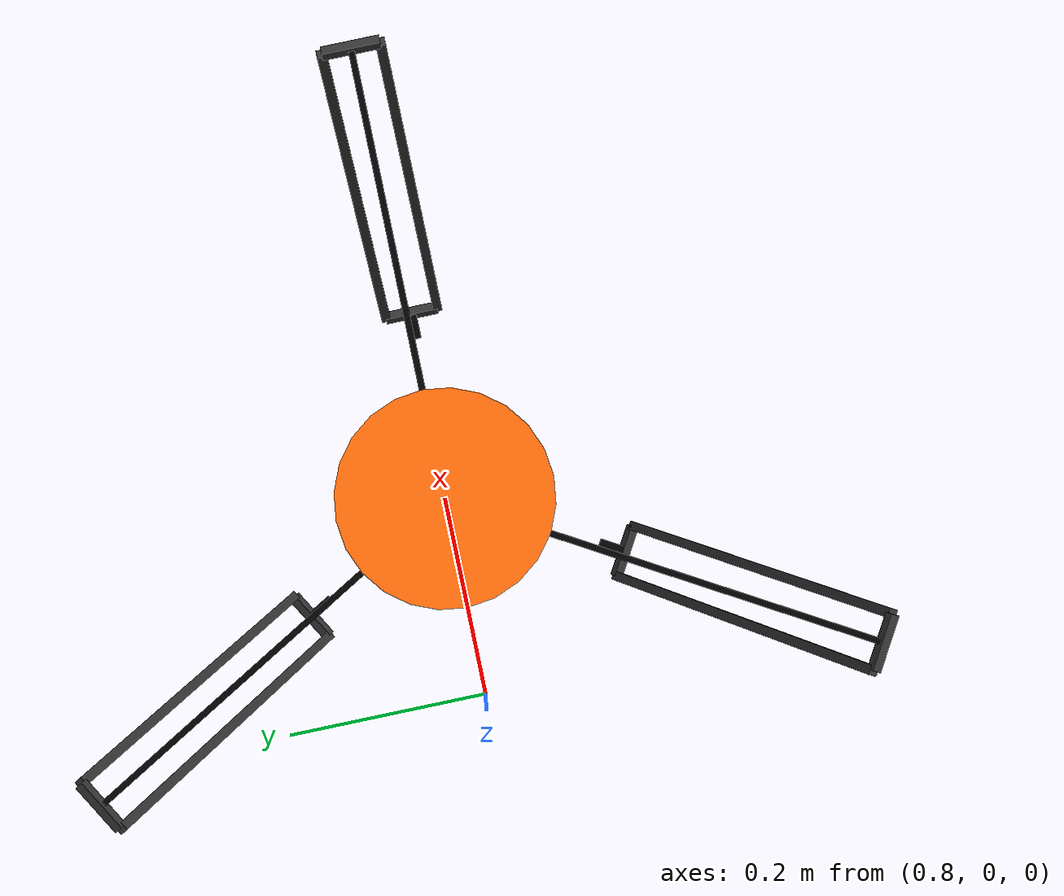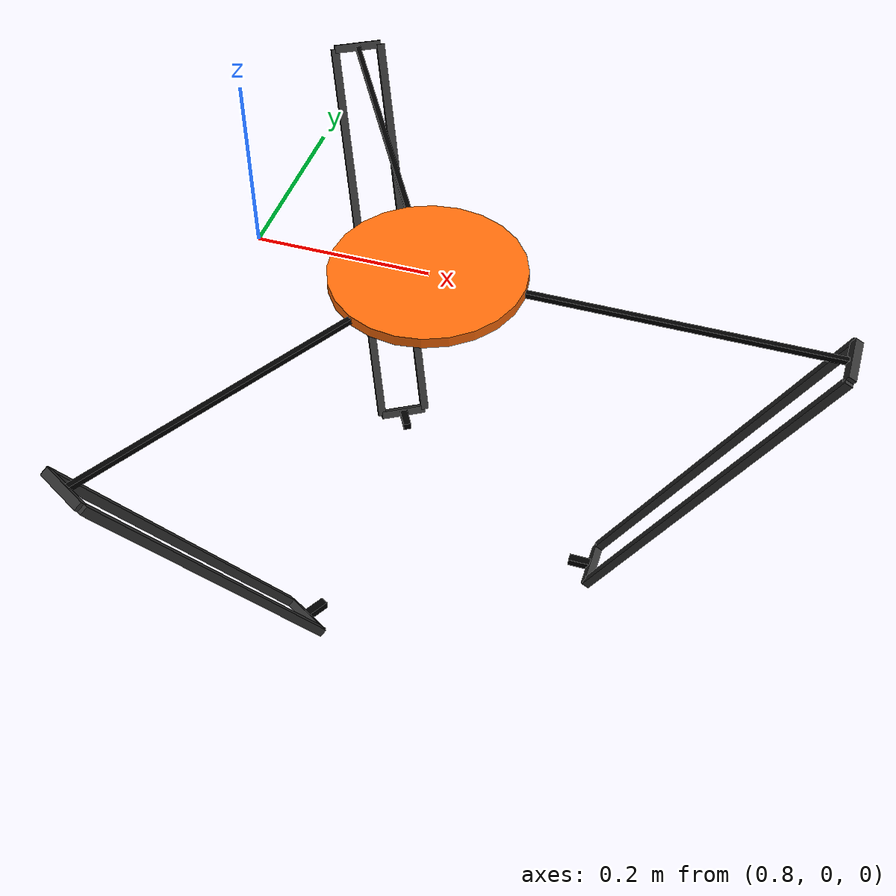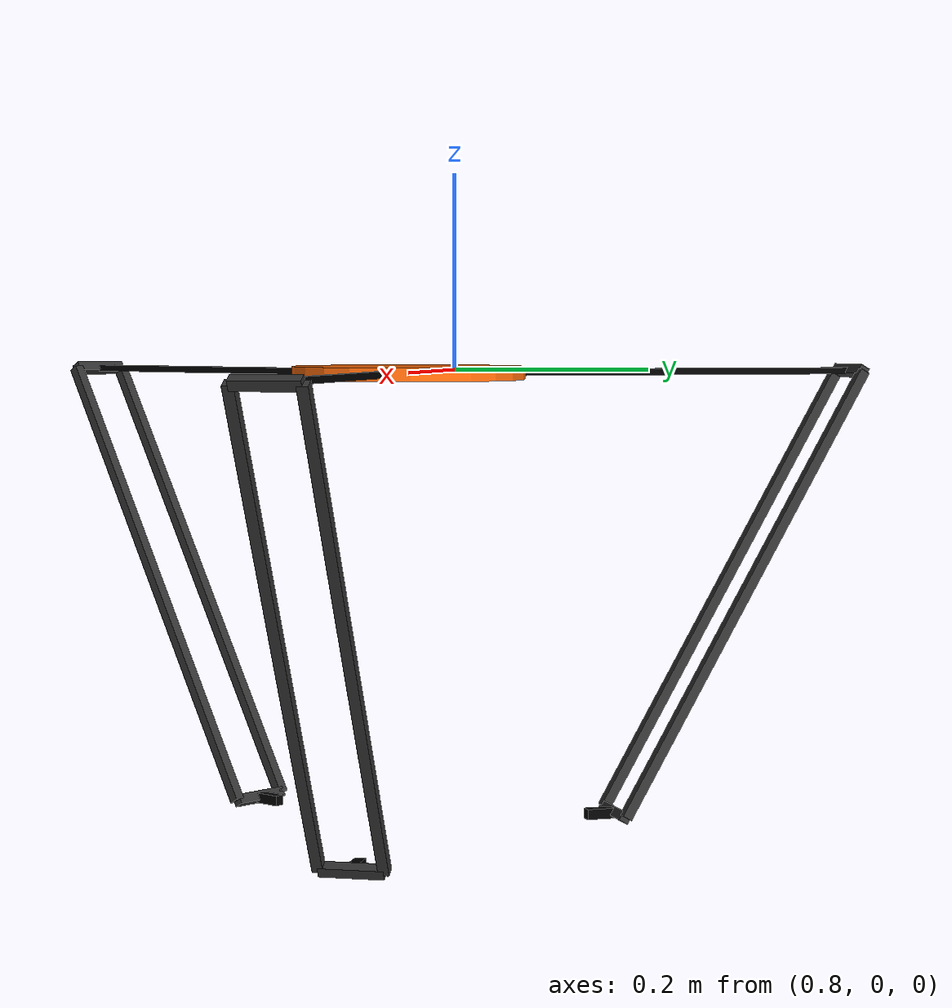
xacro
<?xml version="1.0"?>
<robot xmlns:xacro="http://www.ros.org/wiki/xacro" name="delta">
    <xacro:arg name="initial_positions_file" default="initial_positions.yaml" />

    <!-- Import delta urdf file -->
    <xacro:include filename="$(find my_third_delta)/urdf/delta.urdf" />

    <!-- Import control_xacro -->
    <xacro:include filename="delta.ros2_control.xacro" />

    <xacro:delta_ros2_control name="FakeSystem" initial_positions_file="$(arg initial_positions_file)"/>

</robot>

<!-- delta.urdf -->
<!-- |    This document was autogenerated by xacro from delta.urdf.xacro               | -->
<!-- |    EDITING THIS FILE BY HAND IS NOT RECOMMENDED                                 | -->
<robot name="delta">
  <!-- base and end links -->
  <!-- Upper link -->
  <physics type="ode">
    <max_step_size>0.001</max_step_size>
    <real_time_factor>0.1</real_time_factor>
    <real_time_update_rate>1000</real_time_update_rate>
    <gravity>0 0 -9.8</gravity>
  </physics>
  <gazebo>
    <plugin filename="libgazebo_ros2_control.so" name="gazebo_ros2_control">
      <robotNamespace/>
      <robotSimType>gazebo_ros2_control/DefaultRobotHWSim</robotSimType>
    </plugin>
  </gazebo>
  <gazebo reference="base_link">
    <material>Gazebo/Orange</material>
    <selfCollide>false</selfCollide>
  </gazebo>
  <gazebo reference="end_link">
    <material>Gazebo/Orange</material>
    <selfCollide>false</selfCollide>
  </gazebo>
  <transmission name="arm_1_delta_joint_trans">
    <type>transmission_interface/Transmission</type>
    <joint name="arm_1_delta_joint">
      <hardwareInterface>hardware_interface::EffortJoint</hardwareInterface>
    </joint>
    <actuator name="arm_1_delta_joint_motor">
      <hardwareInterface>hardware_interface::EffortJoint</hardwareInterface>
      <mechanicalReduction>1</mechanicalReduction>
    </actuator>
  </transmission>
  <transmission name="arm_2_delta_joint_trans">
    <type>transmission_interface/Transmission</type>
    <joint name="arm_2_delta_joint">
      <hardwareInterface>hardware_interface::EffortJoint</hardwareInterface>
    </joint>
    <actuator name="arm_2_delta_joint_motor">
      <hardwareInterface>hardware_interface::EffortJoint</hardwareInterface>
      <mechanicalReduction>1</mechanicalReduction>
    </actuator>
  </transmission>
  <transmission name="arm_3_delta_joint_trans">
    <type>transmission_interface/Transmission</type>
    <joint name="arm_3_delta_joint">
      <hardwareInterface>hardware_interface::EffortJoint</hardwareInterface>
    </joint>
    <actuator name="arm_3_delta_joint_motor">
      <hardwareInterface>hardware_interface::EffortJoint</hardwareInterface>
      <mechanicalReduction>1</mechanicalReduction>
    </actuator>
  </transmission>
  <!-- Base of the robot -->
  <link name="world"/>
  <joint name="world_base_joint" type="fixed">
    <origin rpy="0.0 0.0 0.0" xyz="1 0.0 0.0"/>
    <parent link="world"/>
    <child link="base_link"/>
  </joint>
  <link name="base_link">
    <visual>
      <origin rpy="0.0 0.0 0.0" xyz="0.0 0.0 0.0"/>
      <geometry>
        <cylinder length="0.0127" radius="0.111"/>
      </geometry>
      <material name="orange">
        <color rgba="1.0 0.4235294117647059 0.0392156862745098 1.0"/>
      </material>
    </visual>
    <collision>
      <origin rpy="0.0 0.0 0.0" xyz="0.0 0.0 0.0"/>
      <geometry>
        <cylinder length="0.0127" radius="0.111"/>
      </geometry>
    </collision>
    <inertial>
      <origin rpy="0.0 0.0 0.0" xyz="0.0 0.0 0.0"/>
      <mass value="12"/>
      <inertia ixx="0.037124290000000004" ixy="0.0" ixz="0.0" iyy="0.037124290000000004" iyz="0.0" izz="0.073926"/>
    </inertial>
  </link>
  <link name="arm_1_link">
    <collision>
      <origin rpy="0 0 0" xyz="0.175 0 0"/>
      <geometry>
        <box size="0.35 0.00635 0.00635"/>
      </geometry>
    </collision>
    <visual>
      <origin rpy="0 0 0" xyz="0.175 0 0"/>
      <geometry>
        <box size="0.35 0.00635 0.00635"/>
      </geometry>
      <material name="black">
        <color rgba="0.0 0.0 0.0 1.0"/>
      </material>
    </visual>
    <inertial>
      <origin rpy="0 0 0" xyz="0 0 0.175"/>
      <mass value="0.02"/>
      <inertia ixx="1.344083333333333e-07" ixy="0.0" ixz="0.0" iyy="0.0002042338708333333" iyz="0.0" izz="0.0002042338708333333"/>
    </inertial>
  </link>
  <joint name="arm_1_joint" type="continuous">
    <parent link="arm_1_link"/>
    <child link="forearm_1_top_link"/>
    <origin rpy="0 0.5235987755982988 0" xyz="0.35 0 0"/>
    <axis xyz="0 1 0"/>
  </joint>
  <link name="forearm_1_top_link">
    <collision>
      <origin rpy="0 0 0" xyz="0 0 0"/>
      <geometry>
        <box size="0.01 0.06 0.01"/>
      </geometry>
    </collision>
    <visual>
      <origin rpy="0 0 0" xyz="0 0 0"/>
      <geometry>
        <box size="0.01 0.06 0.01"/>
      </geometry>
      <material name="grey">
        <color rgba="0.2 0.2 0.2 1.0"/>
      </material>
    </visual>
    <inertial>
      <origin rpy="0 0 0" xyz="0 0 0"/>
      <mass value="0.02"/>
      <inertia ixx="6.1666666666666655e-06" ixy="0.0" ixz="0.0" iyy="3.3333333333333335e-07" iyz="0.0" izz="6.1666666666666655e-06"/>
    </inertial>
  </link>
  <joint name="forearm_1_top_right_joint" type="continuous">
    <parent link="forearm_1_top_link"/>
    <child link="forearm_1_right_link"/>
    <origin rpy="0 0 0" xyz="0 -0.03 0"/>
    <axis xyz="1 0 0"/>
  </joint>
  <link name="forearm_1_right_link">
    <collision>
      <origin rpy="0 0 0" xyz="0 0 -0.25"/>
      <geometry>
        <box size="0.01 0.01 0.5"/>
      </geometry>
    </collision>
    <visual>
      <origin rpy="0 0 0" xyz="0 0 -0.25"/>
      <geometry>
        <box size="0.01 0.01 0.5"/>
      </geometry>
      <material name="grey">
        <color rgba="0.2 0.2 0.2 1.0"/>
      </material>
    </visual>
    <inertial>
      <origin rpy="0 0 0" xyz="0 0 -0.25"/>
      <mass value="0.02"/>
      <inertia ixx="0.0004168333333333333" ixy="0.0" ixz="0.0" iyy="0.0004168333333333333" iyz="0.0" izz="3.3333333333333335e-07"/>
    </inertial>
  </link>
  <joint name="forearm_1_top_left_joint" type="continuous">
    <parent link="forearm_1_top_link"/>
    <child link="forearm_1_left_link"/>
    <origin rpy="0 0 0" xyz="0 0.03 0"/>
    <axis xyz="1 0 0"/>
  </joint>
  <link name="forearm_1_left_link">
    <collision>
      <origin rpy="0 0 0" xyz="0 0 -0.25"/>
      <geometry>
        <box size="0.01 0.01 0.5"/>
      </geometry>
    </collision>
    <visual>
      <origin rpy="0 0 0" xyz="0 0 -0.25"/>
      <geometry>
        <box size="0.01 0.01 0.5"/>
      </geometry>
      <material name="grey">
        <color rgba="0.2 0.2 0.2 1.0"/>
      </material>
    </visual>
    <inertial>
      <origin rpy="0 0 0" xyz="0 0 -0.25"/>
      <mass value="0.02"/>
      <inertia ixx="0.0004168333333333333" ixy="0.0" ixz="0.0" iyy="0.0004168333333333333" iyz="0.0" izz="3.3333333333333335e-07"/>
    </inertial>
  </link>
  <joint name="forearm_1_right_bottom_joint" type="continuous">
    <parent link="forearm_1_right_link"/>
    <child link="forearm_1_bottom_link"/>
    <origin rpy="0 0 0" xyz="0 0 -0.5"/>
    <axis xyz="1 0 0"/>
  </joint>
  <link name="forearm_1_bottom_link">
    <collision>
      <origin rpy="0 0 0" xyz="0 0.03 0"/>
      <geometry>
        <box size="0.01 0.06 0.01"/>
      </geometry>
    </collision>
    <visual>
      <origin rpy="0 0 0" xyz="0 0.03 0"/>
      <geometry>
        <box size="0.01 0.06 0.01"/>
      </geometry>
      <material name="grey">
        <color rgba="0.2 0.2 0.2 1.0"/>
      </material>
    </visual>
    <inertial>
      <origin rpy="0 0 0" xyz="0 0.03 0"/>
      <mass value="0.02"/>
      <inertia ixx="6.1666666666666655e-06" ixy="0.0" ixz="0.0" iyy="3.3333333333333335e-07" iyz="0.0" izz="6.1666666666666655e-06"/>
    </inertial>
  </link>
  <joint name="forearm_1_bottom_end_joint" type="continuous">
    <parent link="forearm_1_bottom_link"/>
    <child link="forearm_1_end_link"/>
    <origin rpy="0 -0.5235987755982988 0" xyz="0 0.03 0"/>
    <axis xyz="0 1 0"/>
  </joint>
  <link name="forearm_1_end_link">
    <collision>
      <origin rpy="0 0 0" xyz="-0.015 0 0"/>
      <geometry>
        <box size="0.03 0.01 0.01"/>
      </geometry>
    </collision>
    <visual>
      <origin rpy="0 0 0" xyz="-0.015 0 0"/>
      <geometry>
        <box size="0.03 0.01 0.01"/>
      </geometry>
      <material name="black">
        <color rgba="0.0 0.0 0.0 1.0"/>
      </material>
    </visual>
    <inertial>
      <origin rpy="0 0 0" xyz="-0.015 0 0"/>
      <mass value="0.02"/>
      <inertia ixx="3.3333333333333335e-07" ixy="0.0" ixz="0.0" iyy="1.6666666666666667e-06" iyz="0.0" izz="1.6666666666666667e-06"/>
    </inertial>
  </link>
  <joint name="forearm_1_bottom_virtual_joint" type="continuous">
    <parent link="forearm_1_bottom_link"/>
    <child link="forearm_1_bottom_virtual_link"/>
    <origin rpy="0 0 0" xyz="0 0.06 0"/>
    <axis xyz="1 0 0"/>
  </joint>
  <link name="forearm_1_bottom_virtual_link">
    <inertial>
      <origin rpy="0 0 0" xyz="0 0 0"/>
      <mass value="0.01"/>
      <inertia ixx="0.001" ixy="0.0" ixz="0.0" iyy="0.001" iyz="0.0" izz="0.001"/>
    </inertial>
  </link>
  <joint name="forearm_1_left_virtual_joint" type="fixed">
    <parent link="forearm_1_left_link"/>
    <child link="forearm_1_left_virtual_link"/>
    <origin rpy="0 0 0" xyz="0 0 -0.5"/>
  </joint>
  <link name="forearm_1_left_virtual_link">
    <inertial>
      <origin rpy="0 0 0" xyz="0 0 0"/>
      <mass value="0.01"/>
      <inertia ixx="0.001" ixy="0.0" ixz="0.0" iyy="0.001" iyz="0.0" izz="0.001"/>
    </inertial>
  </link>
  <gazebo>
    <joint name="forearm_1_left_bottom_joint" type="fixed">
      <parent>forearm_1_left_virtual_link</parent>
      <child>forearm_1_bottom_virtual_link</child>
      <pose> 0 0 0 0 0 0 </pose>
    </joint>
  </gazebo>
  <gazebo reference="arm_1_link">
    <material>Gazebo/Black</material>
    <selfCollide>false</selfCollide>
  </gazebo>
  <gazebo reference="forearm_1_top_link">
    <material>Gazebo/Grey</material>
    <selfCollide>false</selfCollide>
  </gazebo>
  <gazebo reference="forearm_1_right_link">
    <material>Gazebo/Grey</material>
    <selfCollide>false</selfCollide>
  </gazebo>
  <gazebo reference="forearm_1_left_link">
    <material>Gazebo/Grey</material>
    <selfCollide>false</selfCollide>
  </gazebo>
  <gazebo reference="forearm_1_bottom_link">
    <material>Gazebo/Grey</material>
    <selfCollide>false</selfCollide>
  </gazebo>
  <gazebo reference="forearm_1_end_link">
    <material>Gazebo/Black</material>
    <selfCollide>false</selfCollide>
  </gazebo>
  <transmission name="arm_1_joint_trans">
    <type>transmission_interface/Transmission</type>
    <joint name="arm_1_joint">
      <hardwareInterface>hardware_interface::EffortJoint</hardwareInterface>
    </joint>
    <actuator name="arm_1_joint_motor">
      <hardwareInterface>hardware_interface::EffortJoint</hardwareInterface>
      <mechanicalReduction>1</mechanicalReduction>
    </actuator>
  </transmission>
  <transmission name="forearm_1_top_rignt_joint_trans">
    <type>transmission_interface/Transmission</type>
    <joint name="forearm_1_top_rignt_joint">
      <hardwareInterface>hardware_interface::EffortJoint</hardwareInterface>
    </joint>
    <actuator name="forearm_1_top_rignt_joint_motor">
      <hardwareInterface>hardware_interface::EffortJoint</hardwareInterface>
      <mechanicalReduction>1</mechanicalReduction>
    </actuator>
  </transmission>
  <transmission name="forearm_1_top_left_joint_trans">
    <type>transmission_interface/Transmission</type>
    <joint name="forearm_1_top_left_joint">
      <hardwareInterface>hardware_interface::EffortJoint</hardwareInterface>
    </joint>
    <actuator name="forearm_1_top_left_joint_motor">
      <hardwareInterface>hardware_interface::EffortJoint</hardwareInterface>
      <mechanicalReduction>1</mechanicalReduction>
    </actuator>
  </transmission>
  <transmission name="forearm_1_right_bottom_joint_trans">
    <type>transmission_interface/Transmission</type>
    <joint name="forearm_1_right_bottom_joint">
      <hardwareInterface>hardware_interface::EffortJoint</hardwareInterface>
    </joint>
    <actuator name="forearm_1_right_bottom_joint_motor">
      <hardwareInterface>hardware_interface::EffortJoint</hardwareInterface>
      <mechanicalReduction>1</mechanicalReduction>
    </actuator>
  </transmission>
  <transmission name="forearm_1_bottom_end_joint_trans">
    <type>transmission_interface/Transmission</type>
    <joint name="forearm_1_bottom_end_joint">
      <hardwareInterface>hardware_interface::EffortJoint</hardwareInterface>
    </joint>
    <actuator name="forearm_1_bottom_end_joint_motor">
      <hardwareInterface>hardware_interface::EffortJoint</hardwareInterface>
      <mechanicalReduction>1</mechanicalReduction>
    </actuator>
  </transmission>
  <transmission name="forearm_1_bottom_virtual_joint_trans">
    <type>transmission_interface/Transmission</type>
    <joint name="forearm_1_bottom_virtual_joint">
      <hardwareInterface>hardware_interface::EffortJoint</hardwareInterface>
    </joint>
    <actuator name="forearm_1_bottom_virtual_joint_motor">
      <hardwareInterface>hardware_interface::EffortJoint</hardwareInterface>
      <mechanicalReduction>1</mechanicalReduction>
    </actuator>
  </transmission>
  <joint name="arm_1_delta_joint" type="revolute">
    <parent link="base_link"/>
    <child link="arm_1_link"/>
    <origin rpy="0.0 0.0 0.0" xyz="0.111 0.0 0.0"/>
    <axis xyz="0.0 1 0.0"/>
    <dynamics damping="0.7"/>
    <limit effort="6" lower="-0.3490658503988659" upper="1.5707963267948966" velocity="8"/>
  </joint>
  <link name="arm_2_link">
    <collision>
      <origin rpy="0 0 0" xyz="0.175 0 0"/>
      <geometry>
        <box size="0.35 0.00635 0.00635"/>
      </geometry>
    </collision>
    <visual>
      <origin rpy="0 0 0" xyz="0.175 0 0"/>
      <geometry>
        <box size="0.35 0.00635 0.00635"/>
      </geometry>
      <material name="black">
        <color rgba="0.0 0.0 0.0 1.0"/>
      </material>
    </visual>
    <inertial>
      <origin rpy="0 0 0" xyz="0 0 0.175"/>
      <mass value="0.02"/>
      <inertia ixx="1.344083333333333e-07" ixy="0.0" ixz="0.0" iyy="0.0002042338708333333" iyz="0.0" izz="0.0002042338708333333"/>
    </inertial>
  </link>
  <joint name="arm_2_joint" type="continuous">
    <parent link="arm_2_link"/>
    <child link="forearm_2_top_link"/>
    <origin rpy="0 0.5235987755982988 0" xyz="0.35 0 0"/>
    <axis xyz="0 1 0"/>
  </joint>
  <link name="forearm_2_top_link">
    <collision>
      <origin rpy="0 0 0" xyz="0 0 0"/>
      <geometry>
        <box size="0.01 0.06 0.01"/>
      </geometry>
    </collision>
    <visual>
      <origin rpy="0 0 0" xyz="0 0 0"/>
      <geometry>
        <box size="0.01 0.06 0.01"/>
      </geometry>
      <material name="grey">
        <color rgba="0.2 0.2 0.2 1.0"/>
      </material>
    </visual>
    <inertial>
      <origin rpy="0 0 0" xyz="0 0 0"/>
      <mass value="0.02"/>
      <inertia ixx="6.1666666666666655e-06" ixy="0.0" ixz="0.0" iyy="3.3333333333333335e-07" iyz="0.0" izz="6.1666666666666655e-06"/>
    </inertial>
  </link>
  <joint name="forearm_2_top_right_joint" type="continuous">
    <parent link="forearm_2_top_link"/>
    <child link="forearm_2_right_link"/>
    <origin rpy="0 0 0" xyz="0 -0.03 0"/>
    <axis xyz="1 0 0"/>
  </joint>
  <link name="forearm_2_right_link">
    <collision>
      <origin rpy="0 0 0" xyz="0 0 -0.25"/>
      <geometry>
        <box size="0.01 0.01 0.5"/>
      </geometry>
    </collision>
    <visual>
      <origin rpy="0 0 0" xyz="0 0 -0.25"/>
      <geometry>
        <box size="0.01 0.01 0.5"/>
      </geometry>
      <material name="grey">
        <color rgba="0.2 0.2 0.2 1.0"/>
      </material>
    </visual>
    <inertial>
      <origin rpy="0 0 0" xyz="0 0 -0.25"/>
      <mass value="0.02"/>
      <inertia ixx="0.0004168333333333333" ixy="0.0" ixz="0.0" iyy="0.0004168333333333333" iyz="0.0" izz="3.3333333333333335e-07"/>
    </inertial>
  </link>
  <joint name="forearm_2_top_left_joint" type="continuous">
    <parent link="forearm_2_top_link"/>
    <child link="forearm_2_left_link"/>
    <origin rpy="0 0 0" xyz="0 0.03 0"/>
    <axis xyz="1 0 0"/>
  </joint>
  <link name="forearm_2_left_link">
    <collision>
      <origin rpy="0 0 0" xyz="0 0 -0.25"/>
      <geometry>
        <box size="0.01 0.01 0.5"/>
      </geometry>
    </collision>
    <visual>
      <origin rpy="0 0 0" xyz="0 0 -0.25"/>
      <geometry>
        <box size="0.01 0.01 0.5"/>
      </geometry>
      <material name="grey">
        <color rgba="0.2 0.2 0.2 1.0"/>
      </material>
    </visual>
    <inertial>
      <origin rpy="0 0 0" xyz="0 0 -0.25"/>
      <mass value="0.02"/>
      <inertia ixx="0.0004168333333333333" ixy="0.0" ixz="0.0" iyy="0.0004168333333333333" iyz="0.0" izz="3.3333333333333335e-07"/>
    </inertial>
  </link>
  <joint name="forearm_2_right_bottom_joint" type="continuous">
    <parent link="forearm_2_right_link"/>
    <child link="forearm_2_bottom_link"/>
    <origin rpy="0 0 0" xyz="0 0 -0.5"/>
    <axis xyz="1 0 0"/>
  </joint>
  <link name="forearm_2_bottom_link">
    <collision>
      <origin rpy="0 0 0" xyz="0 0.03 0"/>
      <geometry>
        <box size="0.01 0.06 0.01"/>
      </geometry>
    </collision>
    <visual>
      <origin rpy="0 0 0" xyz="0 0.03 0"/>
      <geometry>
        <box size="0.01 0.06 0.01"/>
      </geometry>
      <material name="grey">
        <color rgba="0.2 0.2 0.2 1.0"/>
      </material>
    </visual>
    <inertial>
      <origin rpy="0 0 0" xyz="0 0.03 0"/>
      <mass value="0.02"/>
      <inertia ixx="6.1666666666666655e-06" ixy="0.0" ixz="0.0" iyy="3.3333333333333335e-07" iyz="0.0" izz="6.1666666666666655e-06"/>
    </inertial>
  </link>
  <joint name="forearm_2_bottom_end_joint" type="continuous">
    <parent link="forearm_2_bottom_link"/>
    <child link="forearm_2_end_link"/>
    <origin rpy="0 -0.5235987755982988 0" xyz="0 0.03 0"/>
    <axis xyz="0 1 0"/>
  </joint>
  <link name="forearm_2_end_link">
    <collision>
      <origin rpy="0 0 0" xyz="-0.015 0 0"/>
      <geometry>
        <box size="0.03 0.01 0.01"/>
      </geometry>
    </collision>
    <visual>
      <origin rpy="0 0 0" xyz="-0.015 0 0"/>
      <geometry>
        <box size="0.03 0.01 0.01"/>
      </geometry>
      <material name="black">
        <color rgba="0.0 0.0 0.0 1.0"/>
      </material>
    </visual>
    <inertial>
      <origin rpy="0 0 0" xyz="-0.015 0 0"/>
      <mass value="0.02"/>
      <inertia ixx="3.3333333333333335e-07" ixy="0.0" ixz="0.0" iyy="1.6666666666666667e-06" iyz="0.0" izz="1.6666666666666667e-06"/>
    </inertial>
  </link>
  <joint name="forearm_2_bottom_virtual_joint" type="continuous">
    <parent link="forearm_2_bottom_link"/>
    <child link="forearm_2_bottom_virtual_link"/>
    <origin rpy="0 0 0" xyz="0 0.06 0"/>
    <axis xyz="1 0 0"/>
  </joint>
  <link name="forearm_2_bottom_virtual_link">
    <inertial>
      <origin rpy="0 0 0" xyz="0 0 0"/>
      <mass value="0.01"/>
      <inertia ixx="0.001" ixy="0.0" ixz="0.0" iyy="0.001" iyz="0.0" izz="0.001"/>
    </inertial>
  </link>
  <joint name="forearm_2_left_virtual_joint" type="fixed">
    <parent link="forearm_2_left_link"/>
    <child link="forearm_2_left_virtual_link"/>
    <origin rpy="0 0 0" xyz="0 0 -0.5"/>
  </joint>
  <link name="forearm_2_left_virtual_link">
    <inertial>
      <origin rpy="0 0 0" xyz="0 0 0"/>
      <mass value="0.01"/>
      <inertia ixx="0.001" ixy="0.0" ixz="0.0" iyy="0.001" iyz="0.0" izz="0.001"/>
    </inertial>
  </link>
  <gazebo>
    <joint name="forearm_2_left_bottom_joint" type="fixed">
      <parent>forearm_2_left_virtual_link</parent>
      <child>forearm_2_bottom_virtual_link</child>
      <pose> 0 0 0 0 0 0 </pose>
    </joint>
  </gazebo>
  <gazebo reference="arm_2_link">
    <material>Gazebo/Black</material>
    <selfCollide>false</selfCollide>
  </gazebo>
  <gazebo reference="forearm_2_top_link">
    <material>Gazebo/Grey</material>
    <selfCollide>false</selfCollide>
  </gazebo>
  <gazebo reference="forearm_2_right_link">
    <material>Gazebo/Grey</material>
    <selfCollide>false</selfCollide>
  </gazebo>
  <gazebo reference="forearm_2_left_link">
    <material>Gazebo/Grey</material>
    <selfCollide>false</selfCollide>
  </gazebo>
  <gazebo reference="forearm_2_bottom_link">
    <material>Gazebo/Grey</material>
    <selfCollide>false</selfCollide>
  </gazebo>
  <gazebo reference="forearm_2_end_link">
    <material>Gazebo/Black</material>
    <selfCollide>false</selfCollide>
  </gazebo>
  <transmission name="arm_2_joint_trans">
    <type>transmission_interface/Transmission</type>
    <joint name="arm_2_joint">
      <hardwareInterface>hardware_interface::EffortJoint</hardwareInterface>
    </joint>
    <actuator name="arm_2_joint_motor">
      <hardwareInterface>hardware_interface::EffortJoint</hardwareInterface>
      <mechanicalReduction>1</mechanicalReduction>
    </actuator>
  </transmission>
  <transmission name="forearm_2_top_rignt_joint_trans">
    <type>transmission_interface/Transmission</type>
    <joint name="forearm_2_top_rignt_joint">
      <hardwareInterface>hardware_interface::EffortJoint</hardwareInterface>
    </joint>
    <actuator name="forearm_2_top_rignt_joint_motor">
      <hardwareInterface>hardware_interface::EffortJoint</hardwareInterface>
      <mechanicalReduction>1</mechanicalReduction>
    </actuator>
  </transmission>
  <transmission name="forearm_2_top_left_joint_trans">
    <type>transmission_interface/Transmission</type>
    <joint name="forearm_2_top_left_joint">
      <hardwareInterface>hardware_interface::EffortJoint</hardwareInterface>
    </joint>
    <actuator name="forearm_2_top_left_joint_motor">
      <hardwareInterface>hardware_interface::EffortJoint</hardwareInterface>
      <mechanicalReduction>1</mechanicalReduction>
    </actuator>
  </transmission>
  <transmission name="forearm_2_right_bottom_joint_trans">
    <type>transmission_interface/Transmission</type>
    <joint name="forearm_2_right_bottom_joint">
      <hardwareInterface>hardware_interface::EffortJoint</hardwareInterface>
    </joint>
    <actuator name="forearm_2_right_bottom_joint_motor">
      <hardwareInterface>hardware_interface::EffortJoint</hardwareInterface>
      <mechanicalReduction>1</mechanicalReduction>
    </actuator>
  </transmission>
  <transmission name="forearm_2_bottom_end_joint_trans">
    <type>transmission_interface/Transmission</type>
    <joint name="forearm_2_bottom_end_joint">
      <hardwareInterface>hardware_interface::EffortJoint</hardwareInterface>
    </joint>
    <actuator name="forearm_2_bottom_end_joint_motor">
      <hardwareInterface>hardware_interface::EffortJoint</hardwareInterface>
      <mechanicalReduction>1</mechanicalReduction>
    </actuator>
  </transmission>
  <transmission name="forearm_2_bottom_virtual_joint_trans">
    <type>transmission_interface/Transmission</type>
    <joint name="forearm_2_bottom_virtual_joint">
      <hardwareInterface>hardware_interface::EffortJoint</hardwareInterface>
    </joint>
    <actuator name="forearm_2_bottom_virtual_joint_motor">
      <hardwareInterface>hardware_interface::EffortJoint</hardwareInterface>
      <mechanicalReduction>1</mechanicalReduction>
    </actuator>
  </transmission>
  <joint name="arm_2_delta_joint" type="revolute">
    <parent link="base_link"/>
    <child link="arm_2_link"/>
    <origin rpy="0.0 0.0 -2.0943951023931953" xyz="-0.0555 -0.09612 0.0"/>
    <axis xyz="0.0 1 0.0"/>
    <dynamics damping="0.7"/>
    <limit effort="6" lower="-0.3490658503988659" upper="1.5707963267948966" velocity="8"/>
  </joint>
  <link name="arm_3_link">
    <collision>
      <origin rpy="0 0 0" xyz="0.175 0 0"/>
      <geometry>
        <box size="0.35 0.00635 0.00635"/>
      </geometry>
    </collision>
    <visual>
      <origin rpy="0 0 0" xyz="0.175 0 0"/>
      <geometry>
        <box size="0.35 0.00635 0.00635"/>
      </geometry>
      <material name="black">
        <color rgba="0.0 0.0 0.0 1.0"/>
      </material>
    </visual>
    <inertial>
      <origin rpy="0 0 0" xyz="0 0 0.175"/>
      <mass value="0.02"/>
      <inertia ixx="1.344083333333333e-07" ixy="0.0" ixz="0.0" iyy="0.0002042338708333333" iyz="0.0" izz="0.0002042338708333333"/>
    </inertial>
  </link>
  <joint name="arm_3_joint" type="continuous">
    <parent link="arm_3_link"/>
    <child link="forearm_3_top_link"/>
    <origin rpy="0 0.5235987755982988 0" xyz="0.35 0 0"/>
    <axis xyz="0 1 0"/>
  </joint>
  <link name="forearm_3_top_link">
    <collision>
      <origin rpy="0 0 0" xyz="0 0 0"/>
      <geometry>
        <box size="0.01 0.06 0.01"/>
      </geometry>
    </collision>
    <visual>
      <origin rpy="0 0 0" xyz="0 0 0"/>
      <geometry>
        <box size="0.01 0.06 0.01"/>
      </geometry>
      <material name="grey">
        <color rgba="0.2 0.2 0.2 1.0"/>
      </material>
    </visual>
    <inertial>
      <origin rpy="0 0 0" xyz="0 0 0"/>
      <mass value="0.02"/>
      <inertia ixx="6.1666666666666655e-06" ixy="0.0" ixz="0.0" iyy="3.3333333333333335e-07" iyz="0.0" izz="6.1666666666666655e-06"/>
    </inertial>
  </link>
  <joint name="forearm_3_top_right_joint" type="continuous">
    <parent link="forearm_3_top_link"/>
    <child link="forearm_3_right_link"/>
    <origin rpy="0 0 0" xyz="0 -0.03 0"/>
    <axis xyz="1 0 0"/>
  </joint>
  <link name="forearm_3_right_link">
    <collision>
      <origin rpy="0 0 0" xyz="0 0 -0.25"/>
      <geometry>
        <box size="0.01 0.01 0.5"/>
      </geometry>
    </collision>
    <visual>
      <origin rpy="0 0 0" xyz="0 0 -0.25"/>
      <geometry>
        <box size="0.01 0.01 0.5"/>
      </geometry>
      <material name="grey">
        <color rgba="0.2 0.2 0.2 1.0"/>
      </material>
    </visual>
    <inertial>
      <origin rpy="0 0 0" xyz="0 0 -0.25"/>
      <mass value="0.02"/>
      <inertia ixx="0.0004168333333333333" ixy="0.0" ixz="0.0" iyy="0.0004168333333333333" iyz="0.0" izz="3.3333333333333335e-07"/>
    </inertial>
  </link>
  <joint name="forearm_3_top_left_joint" type="continuous">
    <parent link="forearm_3_top_link"/>
    <child link="forearm_3_left_link"/>
    <origin rpy="0 0 0" xyz="0 0.03 0"/>
    <axis xyz="1 0 0"/>
  </joint>
  <link name="forearm_3_left_link">
    <collision>
      <origin rpy="0 0 0" xyz="0 0 -0.25"/>
      <geometry>
        <box size="0.01 0.01 0.5"/>
      </geometry>
    </collision>
    <visual>
      <origin rpy="0 0 0" xyz="0 0 -0.25"/>
      <geometry>
        <box size="0.01 0.01 0.5"/>
      </geometry>
      <material name="grey">
        <color rgba="0.2 0.2 0.2 1.0"/>
      </material>
    </visual>
    <inertial>
      <origin rpy="0 0 0" xyz="0 0 -0.25"/>
      <mass value="0.02"/>
      <inertia ixx="0.0004168333333333333" ixy="0.0" ixz="0.0" iyy="0.0004168333333333333" iyz="0.0" izz="3.3333333333333335e-07"/>
    </inertial>
  </link>
  <joint name="forearm_3_right_bottom_joint" type="continuous">
    <parent link="forearm_3_right_link"/>
    <child link="forearm_3_bottom_link"/>
    <origin rpy="0 0 0" xyz="0 0 -0.5"/>
    <axis xyz="1 0 0"/>
  </joint>
  <link name="forearm_3_bottom_link">
    <collision>
      <origin rpy="0 0 0" xyz="0 0.03 0"/>
      <geometry>
        <box size="0.01 0.06 0.01"/>
      </geometry>
    </collision>
    <visual>
      <origin rpy="0 0 0" xyz="0 0.03 0"/>
      <geometry>
        <box size="0.01 0.06 0.01"/>
      </geometry>
      <material name="grey">
        <color rgba="0.2 0.2 0.2 1.0"/>
      </material>
    </visual>
    <inertial>
      <origin rpy="0 0 0" xyz="0 0.03 0"/>
      <mass value="0.02"/>
      <inertia ixx="6.1666666666666655e-06" ixy="0.0" ixz="0.0" iyy="3.3333333333333335e-07" iyz="0.0" izz="6.1666666666666655e-06"/>
    </inertial>
  </link>
  <joint name="forearm_3_bottom_end_joint" type="continuous">
    <parent link="forearm_3_bottom_link"/>
    <child link="forearm_3_end_link"/>
    <origin rpy="0 -0.5235987755982988 0" xyz="0 0.03 0"/>
    <axis xyz="0 1 0"/>
  </joint>
  <link name="forearm_3_end_link">
    <collision>
      <origin rpy="0 0 0" xyz="-0.015 0 0"/>
      <geometry>
        <box size="0.03 0.01 0.01"/>
      </geometry>
    </collision>
    <visual>
      <origin rpy="0 0 0" xyz="-0.015 0 0"/>
      <geometry>
        <box size="0.03 0.01 0.01"/>
      </geometry>
      <material name="black">
        <color rgba="0.0 0.0 0.0 1.0"/>
      </material>
    </visual>
    <inertial>
      <origin rpy="0 0 0" xyz="-0.015 0 0"/>
      <mass value="0.02"/>
      <inertia ixx="3.3333333333333335e-07" ixy="0.0" ixz="0.0" iyy="1.6666666666666667e-06" iyz="0.0" izz="1.6666666666666667e-06"/>
    </inertial>
  </link>
  <joint name="forearm_3_bottom_virtual_joint" type="continuous">
    <parent link="forearm_3_bottom_link"/>
    <child link="forearm_3_bottom_virtual_link"/>
    <origin rpy="0 0 0" xyz="0 0.06 0"/>
    <axis xyz="1 0 0"/>
  </joint>
  <link name="forearm_3_bottom_virtual_link">
    <inertial>
      <origin rpy="0 0 0" xyz="0 0 0"/>
      <mass value="0.01"/>
      <inertia ixx="0.001" ixy="0.0" ixz="0.0" iyy="0.001" iyz="0.0" izz="0.001"/>
    </inertial>
  </link>
  <joint name="forearm_3_left_virtual_joint" type="fixed">
    <parent link="forearm_3_left_link"/>
    <child link="forearm_3_left_virtual_link"/>
    <origin rpy="0 0 0" xyz="0 0 -0.5"/>
  </joint>
  <link name="forearm_3_left_virtual_link">
    <inertial>
      <origin rpy="0 0 0" xyz="0 0 0"/>
      <mass value="0.01"/>
      <inertia ixx="0.001" ixy="0.0" ixz="0.0" iyy="0.001" iyz="0.0" izz="0.001"/>
    </inertial>
  </link>
  <gazebo>
    <joint name="forearm_3_left_bottom_joint" type="fixed">
      <parent>forearm_3_left_virtual_link</parent>
      <child>forearm_3_bottom_virtual_link</child>
      <pose> 0 0 0 0 0 0 </pose>
    </joint>
  </gazebo>
  <gazebo reference="arm_3_link">
    <material>Gazebo/Black</material>
    <selfCollide>false</selfCollide>
  </gazebo>
  <gazebo reference="forearm_3_top_link">
    <material>Gazebo/Grey</material>
    <selfCollide>false</selfCollide>
  </gazebo>
  <gazebo reference="forearm_3_right_link">
    <material>Gazebo/Grey</material>
    <selfCollide>false</selfCollide>
  </gazebo>
  <gazebo reference="forearm_3_left_link">
    <material>Gazebo/Grey</material>
    <selfCollide>false</selfCollide>
  </gazebo>
  <gazebo reference="forearm_3_bottom_link">
    <material>Gazebo/Grey</material>
    <selfCollide>false</selfCollide>
  </gazebo>
  <gazebo reference="forearm_3_end_link">
    <material>Gazebo/Black</material>
    <selfCollide>false</selfCollide>
  </gazebo>
  <transmission name="arm_3_joint_trans">
    <type>transmission_interface/Transmission</type>
    <joint name="arm_3_joint">
      <hardwareInterface>hardware_interface::EffortJoint</hardwareInterface>
    </joint>
    <actuator name="arm_3_joint_motor">
      <hardwareInterface>hardware_interface::EffortJoint</hardwareInterface>
      <mechanicalReduction>1</mechanicalReduction>
    </actuator>
  </transmission>
  <transmission name="forearm_3_top_rignt_joint_trans">
    <type>transmission_interface/Transmission</type>
    <joint name="forearm_3_top_rignt_joint">
      <hardwareInterface>hardware_interface::EffortJoint</hardwareInterface>
    </joint>
    <actuator name="forearm_3_top_rignt_joint_motor">
      <hardwareInterface>hardware_interface::EffortJoint</hardwareInterface>
      <mechanicalReduction>1</mechanicalReduction>
    </actuator>
  </transmission>
  <transmission name="forearm_3_top_left_joint_trans">
    <type>transmission_interface/Transmission</type>
    <joint name="forearm_3_top_left_joint">
      <hardwareInterface>hardware_interface::EffortJoint</hardwareInterface>
    </joint>
    <actuator name="forearm_3_top_left_joint_motor">
      <hardwareInterface>hardware_interface::EffortJoint</hardwareInterface>
      <mechanicalReduction>1</mechanicalReduction>
    </actuator>
  </transmission>
  <transmission name="forearm_3_right_bottom_joint_trans">
    <type>transmission_interface/Transmission</type>
    <joint name="forearm_3_right_bottom_joint">
      <hardwareInterface>hardware_interface::EffortJoint</hardwareInterface>
    </joint>
    <actuator name="forearm_3_right_bottom_joint_motor">
      <hardwareInterface>hardware_interface::EffortJoint</hardwareInterface>
      <mechanicalReduction>1</mechanicalReduction>
    </actuator>
  </transmission>
  <transmission name="forearm_3_bottom_end_joint_trans">
    <type>transmission_interface/Transmission</type>
    <joint name="forearm_3_bottom_end_joint">
      <hardwareInterface>hardware_interface::EffortJoint</hardwareInterface>
    </joint>
    <actuator name="forearm_3_bottom_end_joint_motor">
      <hardwareInterface>hardware_interface::EffortJoint</hardwareInterface>
      <mechanicalReduction>1</mechanicalReduction>
    </actuator>
  </transmission>
  <transmission name="forearm_3_bottom_virtual_joint_trans">
    <type>transmission_interface/Transmission</type>
    <joint name="forearm_3_bottom_virtual_joint">
      <hardwareInterface>hardware_interface::EffortJoint</hardwareInterface>
    </joint>
    <actuator name="forearm_3_bottom_virtual_joint_motor">
      <hardwareInterface>hardware_interface::EffortJoint</hardwareInterface>
      <mechanicalReduction>1</mechanicalReduction>
    </actuator>
  </transmission>
  <joint name="arm_3_delta_joint" type="revolute">
    <parent link="base_link"/>
    <child link="arm_3_link"/>
    <origin rpy="0.0 0.0 2.0943951023931953" xyz="-0.0555 0.09612 0.0"/>
    <axis xyz="0.0 1 0.0"/>
    <dynamics damping="0.7"/>
    <limit effort="6" lower="-0.3490658503988659" upper="1.5707963267948966" velocity="8"/>
  </joint>
</robot>
